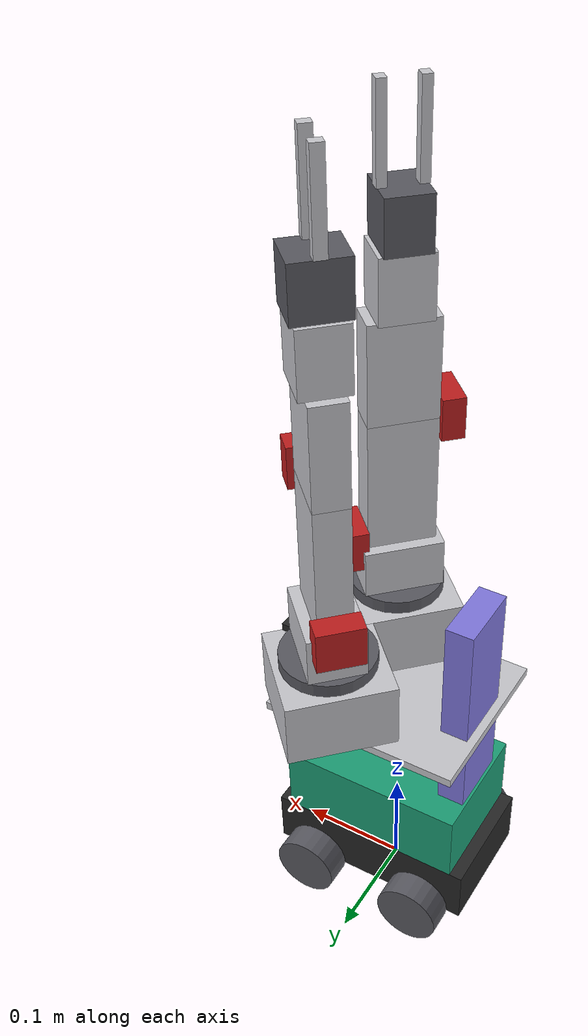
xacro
<?xml version="1.0"?>
<!--
  WAVER CRAB para SIMULACIÓN (Gazebo classic + ros2_control).
  = waver_crab.urdf.xacro + capa de control. Para RViz puro usa el otro.
-->
<robot name="waver_crab" xmlns:xacro="http://www.ros.org/wiki/xacro">
  <xacro:include filename="$(find waver_arm_description)/urdf/waver_crab.urdf.xacro"/>
  <xacro:include filename="$(find waver_arm_description)/urdf/control.xacro"/>
  <xacro:crab_ros2_control/>
</robot>

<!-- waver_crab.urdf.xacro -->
<robot name="waver_crab" xmlns:xacro="http://www.ros.org/wiki/xacro">

  <xacro:include filename="$(find waver_arm_description)/urdf/materials.xacro"/>
  <xacro:include filename="$(find waver_arm_description)/urdf/arm_6dof.xacro"/>

  <!-- ============ plataforma (rover) ============ -->
  <xacro:property name="chasis_lx" value="0.194"/>
  <xacro:property name="chasis_ly" value="0.110"/>
  <xacro:property name="chasis_lz" value="0.055"/>
  <xacro:property name="clearance" value="0.025"/>
  <xacro:property name="wheel_r"   value="0.030"/>
  <xacro:property name="wheel_w"   value="0.025"/>
  <xacro:property name="wheel_x"   value="0.055"/>
  <xacro:property name="wheel_y"   value="${chasis_ly/2 + wheel_w/2 + 0.002}"/>

  <!-- ============ TORSO [calibrar] ============ -->
  <xacro:property name="sub_lx"      value="0.170"/>  <!-- sub-chasis -->
  <xacro:property name="sub_ly"      value="0.110"/>
  <xacro:property name="sub_lz"      value="0.070"/>  <!-- pack DeWalt + Jetson -->
  <xacro:property name="col_h"       value="0.200"/>  <!-- columna + rieles 8mm -->
  <xacro:property name="lift_stroke" value="0.140"/>  <!-- carrera L16-140 -->
  <xacro:property name="plate_lx"    value="0.180"/>  <!-- placa-torso -->
  <xacro:property name="plate_ly"    value="0.150"/>
  <xacro:property name="plate_lz"    value="0.008"/>
  <xacro:property name="arm_x"       value="0.035"/>  <!-- hombros sobre la placa -->
  <xacro:property name="arm_y"       value="0.058"/>
  <xacro:property name="arm_yaw"     value="${pi/4}"/>
  <xacro:property name="lidar_r"     value="0.019"/>
  <xacro:property name="lidar_h"     value="0.032"/>

  <xacro:macro name="inercia_caja_root" params="m x y z">
    <inertial>
      <mass value="${m}"/>
      <inertia ixx="${m*(y*y+z*z)/12.0}" iyy="${m*(x*x+z*z)/12.0}"
               izz="${m*(x*x+y*y)/12.0}" ixy="0" ixz="0" iyz="0"/>
    </inertial>
  </xacro:macro>

  <!-- suelo -> centro del chasis -->
  <link name="base_footprint"/>
  <joint name="base_footprint_joint" type="fixed">
    <parent link="base_footprint"/>
    <child link="base_link"/>
    <origin xyz="0 0 ${clearance + chasis_lz/2}"/>
  </joint>

  <link name="base_link">
    <visual>
      <geometry><box size="${chasis_lx} ${chasis_ly} ${chasis_lz}"/></geometry>
      <material name="negro_mate"/>
    </visual>
    <collision>
      <geometry><box size="${chasis_lx} ${chasis_ly} ${chasis_lz}"/></geometry>
    </collision>
    <xacro:inercia_caja_root m="1.6" x="${chasis_lx}" y="${chasis_ly}" z="${chasis_lz}"/>
  </link>

  <!-- 4 ruedas (fijas: sin encoders, igual que waver_description) -->
  <xacro:macro name="rueda" params="nombre x y">
    <joint name="${nombre}_joint" type="fixed">
      <parent link="base_link"/>
      <child link="${nombre}_link"/>
      <origin xyz="${x} ${y} ${wheel_r - clearance - chasis_lz/2}" rpy="${-pi/2} 0 0"/>
    </joint>
    <link name="${nombre}_link">
      <visual>
        <geometry><cylinder radius="${wheel_r}" length="${wheel_w}"/></geometry>
        <material name="gris_oscuro"/>
      </visual>
      <collision>
        <geometry><cylinder radius="${wheel_r}" length="${wheel_w}"/></geometry>
      </collision>
      <inertial>
        <mass value="0.05"/>
        <inertia ixx="1e-5" iyy="1e-5" izz="1e-5" ixy="0" ixz="0" iyz="0"/>
      </inertial>
    </link>
  </xacro:macro>
  <xacro:rueda nombre="wheel_fl" x="${wheel_x}"  y="${wheel_y}"/>
  <xacro:rueda nombre="wheel_fr" x="${wheel_x}"  y="${-wheel_y}"/>
  <xacro:rueda nombre="wheel_rl" x="${-wheel_x}" y="${wheel_y}"/>
  <xacro:rueda nombre="wheel_rr" x="${-wheel_x}" y="${-wheel_y}"/>

  <!-- ============ TORSO piso 1: sub-chasis (D4: un joint fijo = 4 tornillos) ============ -->
  <joint name="torso_mount_joint" type="fixed">
    <parent link="base_link"/>
    <child link="subchassis_link"/>
    <origin xyz="0 0 ${chasis_lz/2}"/>
  </joint>

  <link name="subchassis_link">
    <!-- caja: pack DeWalt + Jetson + PCA9685 -->
    <visual>
      <origin xyz="0 0 ${sub_lz/2}"/>
      <geometry><box size="${sub_lx} ${sub_ly} ${sub_lz}"/></geometry>
      <material name="teal_waver"/>
    </visual>
    <!-- columna del L16 + rieles (sube desde el sub-chasis) -->
    <visual>
      <origin xyz="${-sub_lx/2 + 0.015} 0 ${sub_lz + col_h/2}"/>
      <geometry><box size="0.025 0.060 ${col_h}"/></geometry>
      <material name="purpura_l16"/>
    </visual>
    <collision>
      <origin xyz="0 0 ${sub_lz/2}"/>
      <geometry><box size="${sub_lx} ${sub_ly} ${sub_lz}"/></geometry>
    </collision>
    <collision>
      <origin xyz="${-sub_lx/2 + 0.015} 0 ${sub_lz + col_h/2}"/>
      <geometry><box size="0.025 0.060 ${col_h}"/></geometry>
    </collision>
    <!-- pack 1.0 kg + Jetson 0.4 + estructura 0.6 -->
    <xacro:inercia_caja_root m="2.0" x="${sub_lx}" y="${sub_ly}" z="${sub_lz}"/>
  </link>

  <!-- LiDAR fijo en el sub-chasis (decisión D1b: altura de escaneo constante) -->
  <joint name="laser_joint" type="fixed">
    <parent link="subchassis_link"/>
    <child link="laser_frame"/>
    <origin xyz="0.045 0 ${sub_lz + lidar_h/2}"/>
  </joint>
  <link name="laser_frame">
    <visual>
      <geometry><cylinder radius="${lidar_r}" length="${lidar_h}"/></geometry>
      <material name="negro_mate"/>
    </visual>
    <collision>
      <geometry><cylinder radius="${lidar_r}" length="${lidar_h}"/></geometry>
    </collision>
    <inertial>
      <mass value="0.05"/>
      <inertia ixx="1e-5" iyy="1e-5" izz="1e-5" ixy="0" ixz="0" iyz="0"/>
    </inertial>
  </link>

  <!-- ============ LA junta estrella: torso_lift (Actuonix L16-140-63-6-R) ============ -->
  <!-- Regla D3/D1: masa elevada <= 4 kg (retención 46 N sin corriente).
       Velocidad real 20 mm/s; esfuerzo 100 N máx (63:1). -->
  <joint name="torso_lift_joint" type="prismatic">
    <parent link="subchassis_link"/>
    <child link="torso_plate_link"/>
    <origin xyz="0 0 ${sub_lz + 0.075}"/>
    <axis xyz="0 0 1"/>
    <limit lower="0.0" upper="${lift_stroke}" effort="100.0" velocity="0.020"/>
  </joint>

  <link name="torso_plate_link">
    <visual>
      <origin xyz="0 0 ${plate_lz/2}"/>
      <geometry><box size="${plate_lx} ${plate_ly} ${plate_lz}"/></geometry>
      <material name="aluminio"/>
    </visual>
    <collision>
      <origin xyz="0 0 ${plate_lz/2}"/>
      <geometry><box size="${plate_lx} ${plate_ly} ${plate_lz}"/></geometry>
    </collision>
    <xacro:inercia_caja_root m="0.45" x="${plate_lx}" y="${plate_ly}" z="0.02"/>
  </link>

  <!-- cámara OAK-D Lite = la "cara" (sube con el torso, mira al frente) -->
  <joint name="oak_joint" type="fixed">
    <parent link="torso_plate_link"/>
    <child link="oak_link"/>
    <origin xyz="${plate_lx/2 - 0.010} 0 ${plate_lz + 0.055}"/>
  </joint>
  <link name="oak_link">
    <visual>
      <geometry><box size="0.0175 0.091 0.028"/></geometry>
      <material name="negro_mate"/>
    </visual>
    <collision>
      <geometry><box size="0.0175 0.091 0.028"/></geometry>
    </collision>
    <inertial>
      <mass value="0.061"/>
      <inertia ixx="1e-5" iyy="1e-5" izz="1e-5" ixy="0" ixz="0" iyz="0"/>
    </inertial>
  </link>
  <!-- cuello de la cara -->
  <joint name="neck_joint" type="fixed">
    <parent link="torso_plate_link"/>
    <child link="neck_link"/>
    <origin xyz="${plate_lx/2 - 0.010} 0 ${plate_lz + 0.020}"/>
  </joint>
  <link name="neck_link">
    <visual>
      <geometry><cylinder radius="0.008" length="0.040"/></geometry>
      <material name="gris_oscuro"/>
    </visual>
    <inertial>
      <mass value="0.02"/>
      <inertia ixx="1e-6" iyy="1e-6" izz="1e-6" ixy="0" ixz="0" iyz="0"/>
    </inertial>
  </link>

  <!-- ============ los dos brazos a ±45° (hombros del CRAB) ============ -->
  <xacro:waver_arm prefix="left_arm_" parent="torso_plate_link">
    <origin xyz="${arm_x} ${arm_y} ${plate_lz}" rpy="0 0 ${arm_yaw}"/>
  </xacro:waver_arm>

  <xacro:waver_arm prefix="right_arm_" parent="torso_plate_link">
    <origin xyz="${arm_x} ${-arm_y} ${plate_lz}" rpy="0 0 ${-arm_yaw}"/>
  </xacro:waver_arm>

</robot>

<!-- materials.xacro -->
<robot xmlns:xacro="http://www.ros.org/wiki/xacro">
  <!-- Paleta del gemelo digital WAVER CRAB -->
  <material name="aluminio">
    <color rgba="0.78 0.78 0.80 1.0"/>
  </material>
  <material name="servo_rojo">
    <color rgba="0.75 0.12 0.12 1.0"/>
  </material>
  <material name="negro_mate">
    <color rgba="0.15 0.15 0.15 1.0"/>
  </material>
  <material name="gris_oscuro">
    <color rgba="0.35 0.35 0.38 1.0"/>
  </material>
  <material name="teal_waver">
    <color rgba="0.11 0.62 0.46 1.0"/>
  </material>
  <material name="purpura_l16">
    <color rgba="0.50 0.47 0.87 1.0"/>
  </material>
</robot>

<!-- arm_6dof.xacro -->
<robot xmlns:xacro="http://www.ros.org/wiki/xacro">

  <!-- ==================== dimensiones [calibrar] ==================== -->
  <xacro:property name="base_lx"        value="0.095"/>  <!-- caja base (aloja servo A) -->
  <xacro:property name="base_ly"        value="0.095"/>
  <xacro:property name="base_lz"        value="0.062"/>
  <xacro:property name="turntable_r"    value="0.042"/>  <!-- disco sobre rodamiento -->
  <xacro:property name="turntable_h"    value="0.012"/>
  <xacro:property name="shoulder_off_z" value="0.045"/>  <!-- disco -> eje hombro -->
  <xacro:property name="upper_len"      value="0.120"/>  <!-- hombro -> codo -->
  <xacro:property name="fore_len"       value="0.090"/>  <!-- codo -> muñeca pitch -->
  <xacro:property name="wrist_len"      value="0.055"/>  <!-- muñeca pitch -> brida roll -->
  <xacro:property name="gripper_base_h" value="0.045"/>  <!-- brida roll -> eje dedos -->
  <xacro:property name="finger_len"     value="0.075"/>  <!-- dedo dentado -->
  <xacro:property name="finger_sep"     value="0.024"/>  <!-- separación ejes engranaje -->
  <xacro:property name="plate_w"        value="0.030"/>  <!-- ancho placas eslabón -->
  <xacro:property name="plate_t"        value="0.060"/>  <!-- fondo par de placas -->

  <!-- servo 40x20 clase MG996R -->
  <xacro:property name="servo_lx" value="0.041"/>
  <xacro:property name="servo_ly" value="0.020"/>
  <xacro:property name="servo_lz" value="0.038"/>

  <!-- limites: servos de 180 grados -> +/- 90 desde el centro -->
  <xacro:property name="lim"        value="${pi/2}"/>
  <xacro:property name="effort_nm"  value="1.0"/>   <!-- MG996R ~10 kg.cm = 0.98 N.m -->
  <xacro:property name="vel_rads"   value="3.0"/>   <!-- ~0.17s/60deg con margen -->

  <!-- ==================== macros de inercia ==================== -->
  <xacro:macro name="inercia_caja" params="m x y z">
    <inertial>
      <mass value="${m}"/>
      <inertia ixx="${m*(y*y+z*z)/12.0}" iyy="${m*(x*x+z*z)/12.0}"
               izz="${m*(x*x+y*y)/12.0}" ixy="0" ixz="0" iyz="0"/>
    </inertial>
  </xacro:macro>
  <xacro:macro name="inercia_cilindro" params="m r h">
    <inertial>
      <mass value="${m}"/>
      <inertia ixx="${m*(3*r*r+h*h)/12.0}" iyy="${m*(3*r*r+h*h)/12.0}"
               izz="${m*r*r/2.0}" ixy="0" ixz="0" iyz="0"/>
    </inertial>
  </xacro:macro>

  <!-- visual de un servo 40x20 (caja roja) -->
  <xacro:macro name="servo_visual" params="xyz rpy:='0 0 0'">
    <visual>
      <origin xyz="${xyz}" rpy="${rpy}"/>
      <geometry><box size="${servo_lx} ${servo_ly} ${servo_lz}"/></geometry>
      <material name="servo_rojo"/>
    </visual>
  </xacro:macro>

  <!-- ==================== la macro del brazo ==================== -->
  <xacro:macro name="waver_arm" params="prefix parent *origin">

    <!-- anclaje al padre (placa-torso) -->
    <joint name="${prefix}mount_joint" type="fixed">
      <parent link="${parent}"/>
      <child link="${prefix}base_link"/>
      <xacro:insert_block name="origin"/>
    </joint>

    <!-- base: caja metalica con servo A y electronica -->
    <link name="${prefix}base_link">
      <visual>
        <origin xyz="0 0 ${base_lz/2}"/>
        <geometry><box size="${base_lx} ${base_ly} ${base_lz}"/></geometry>
        <material name="aluminio"/>
      </visual>
      <collision>
        <origin xyz="0 0 ${base_lz/2}"/>
        <geometry><box size="${base_lx} ${base_ly} ${base_lz}"/></geometry>
      </collision>
      <xacro:inercia_caja m="0.25" x="${base_lx}" y="${base_ly}" z="${base_lz}"/>
    </link>

    <!-- A: yaw de base sobre rodamiento -->
    <joint name="${prefix}yaw_joint" type="revolute">
      <parent link="${prefix}base_link"/>
      <child link="${prefix}turntable_link"/>
      <origin xyz="0 0 ${base_lz}"/>
      <axis xyz="0 0 1"/>
      <limit lower="${-lim}" upper="${lim}" effort="${effort_nm}" velocity="${vel_rads}"/>
    </joint>

    <link name="${prefix}turntable_link">
      <visual>
        <origin xyz="0 0 ${turntable_h/2}"/>
        <geometry><cylinder radius="${turntable_r}" length="${turntable_h}"/></geometry>
        <material name="gris_oscuro"/>
      </visual>
      <!-- horquilla del hombro -->
      <visual>
        <origin xyz="0 0 ${turntable_h + shoulder_off_z/2}"/>
        <geometry><box size="0.050 0.070 ${shoulder_off_z}"/></geometry>
        <material name="aluminio"/>
      </visual>
      <collision>
        <origin xyz="0 0 ${(turntable_h + shoulder_off_z)/2}"/>
        <geometry><box size="0.070 0.080 ${turntable_h + shoulder_off_z}"/></geometry>
      </collision>
      <xacro:inercia_caja m="0.12" x="0.07" y="0.08" z="${turntable_h + shoulder_off_z}"/>
    </link>

    <!-- B: hombro -->
    <joint name="${prefix}shoulder_joint" type="revolute">
      <parent link="${prefix}turntable_link"/>
      <child link="${prefix}upper_arm_link"/>
      <origin xyz="0 0 ${turntable_h + shoulder_off_z}"/>
      <axis xyz="0 1 0"/>
      <limit lower="${-lim}" upper="${lim}" effort="${effort_nm}" velocity="${vel_rads}"/>
    </joint>

    <link name="${prefix}upper_arm_link">
      <visual>
        <origin xyz="0 0 ${upper_len/2}"/>
        <geometry><box size="${plate_w} ${plate_t} ${upper_len}"/></geometry>
        <material name="aluminio"/>
      </visual>
      <xacro:servo_visual xyz="0 ${plate_t/2 + servo_ly/2} 0"/>
      <collision>
        <origin xyz="0 0 ${upper_len/2}"/>
        <geometry><box size="${plate_w} ${plate_t + 2*servo_ly} ${upper_len}"/></geometry>
      </collision>
      <xacro:inercia_caja m="0.18" x="${plate_w}" y="${plate_t}" z="${upper_len}"/>
    </link>

    <!-- C: codo (bloque doble servo del manual, pag. 15) -->
    <joint name="${prefix}elbow_joint" type="revolute">
      <parent link="${prefix}upper_arm_link"/>
      <child link="${prefix}forearm_link"/>
      <origin xyz="0 0 ${upper_len}"/>
      <axis xyz="0 1 0"/>
      <limit lower="${-lim}" upper="${lim}" effort="${effort_nm}" velocity="${vel_rads}"/>
    </joint>

    <link name="${prefix}forearm_link">
      <visual>
        <origin xyz="0 0 ${fore_len/2}"/>
        <geometry><box size="${plate_w} ${plate_t} ${fore_len}"/></geometry>
        <material name="aluminio"/>
      </visual>
      <xacro:servo_visual xyz="0 ${-(plate_t/2 + servo_ly/2)} 0"/>
      <collision>
        <origin xyz="0 0 ${fore_len/2}"/>
        <geometry><box size="${plate_w} ${plate_t + 2*servo_ly} ${fore_len}"/></geometry>
      </collision>
      <xacro:inercia_caja m="0.16" x="${plate_w}" y="${plate_t}" z="${fore_len}"/>
    </link>

    <!-- D: muñeca pitch -->
    <joint name="${prefix}wrist_pitch_joint" type="revolute">
      <parent link="${prefix}forearm_link"/>
      <child link="${prefix}wrist_link"/>
      <origin xyz="0 0 ${fore_len}"/>
      <axis xyz="0 1 0"/>
      <limit lower="${-lim}" upper="${lim}" effort="${effort_nm}" velocity="${vel_rads}"/>
    </joint>

    <link name="${prefix}wrist_link">
      <visual>
        <origin xyz="0 0 ${wrist_len/2}"/>
        <geometry><box size="0.040 0.045 ${wrist_len}"/></geometry>
        <material name="aluminio"/>
      </visual>
      <collision>
        <origin xyz="0 0 ${wrist_len/2}"/>
        <geometry><box size="0.045 0.050 ${wrist_len}"/></geometry>
      </collision>
      <xacro:inercia_caja m="0.09" x="0.04" y="0.045" z="${wrist_len}"/>
    </link>

    <!-- E: muñeca roll (gira la garra sobre el eje del brazo) -->
    <joint name="${prefix}wrist_roll_joint" type="revolute">
      <parent link="${prefix}wrist_link"/>
      <child link="${prefix}gripper_base_link"/>
      <origin xyz="0 0 ${wrist_len}"/>
      <axis xyz="0 0 1"/>
      <limit lower="${-lim}" upper="${lim}" effort="${effort_nm}" velocity="${vel_rads}"/>
    </joint>

    <link name="${prefix}gripper_base_link">
      <visual>
        <origin xyz="0 0 ${gripper_base_h/2}"/>
        <geometry><box size="0.045 0.038 ${gripper_base_h}"/></geometry>
        <material name="gris_oscuro"/>
      </visual>
      <collision>
        <origin xyz="0 0 ${gripper_base_h/2}"/>
        <geometry><box size="0.045 0.038 ${gripper_base_h}"/></geometry>
      </collision>
      <xacro:inercia_caja m="0.10" x="0.045" y="0.038" z="${gripper_base_h}"/>
    </link>

    <!-- F: garra de engranajes — dedo izquierdo actuado, derecho espejo (mimic) -->
    <joint name="${prefix}finger_l_joint" type="revolute">
      <parent link="${prefix}gripper_base_link"/>
      <child link="${prefix}finger_l_link"/>
      <origin xyz="0 ${finger_sep/2} ${gripper_base_h}"/>
      <axis xyz="1 0 0"/>
      <limit lower="0.0" upper="1.0" effort="${effort_nm}" velocity="${vel_rads}"/>
    </joint>
    <link name="${prefix}finger_l_link">
      <visual>
        <origin xyz="0 0.004 ${finger_len/2}"/>
        <geometry><box size="0.010 0.008 ${finger_len}"/></geometry>
        <material name="aluminio"/>
      </visual>
      <collision>
        <origin xyz="0 0.004 ${finger_len/2}"/>
        <geometry><box size="0.010 0.008 ${finger_len}"/></geometry>
      </collision>
      <xacro:inercia_caja m="0.02" x="0.01" y="0.008" z="${finger_len}"/>
    </link>

    <joint name="${prefix}finger_r_joint" type="revolute">
      <parent link="${prefix}gripper_base_link"/>
      <child link="${prefix}finger_r_link"/>
      <origin xyz="0 ${-finger_sep/2} ${gripper_base_h}"/>
      <axis xyz="1 0 0"/>
      <limit lower="-1.0" upper="0.0" effort="${effort_nm}" velocity="${vel_rads}"/>
      <mimic joint="${prefix}finger_l_joint" multiplier="-1.0"/>
    </joint>
    <link name="${prefix}finger_r_link">
      <visual>
        <origin xyz="0 -0.004 ${finger_len/2}"/>
        <geometry><box size="0.010 0.008 ${finger_len}"/></geometry>
        <material name="aluminio"/>
      </visual>
      <collision>
        <origin xyz="0 -0.004 ${finger_len/2}"/>
        <geometry><box size="0.010 0.008 ${finger_len}"/></geometry>
      </collision>
      <xacro:inercia_caja m="0.02" x="0.01" y="0.008" z="${finger_len}"/>
    </link>

    <!-- frame de herramienta (punta de la garra, objetivo de IK/MoveIt2) -->
    <joint name="${prefix}tool0_joint" type="fixed">
      <parent link="${prefix}gripper_base_link"/>
      <child link="${prefix}tool0"/>
      <origin xyz="0 0 ${gripper_base_h + finger_len}"/>
    </joint>
    <link name="${prefix}tool0"/>

  </xacro:macro>
</robot>
